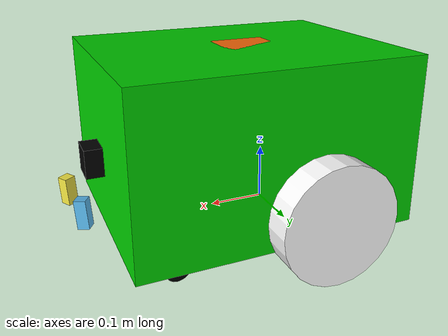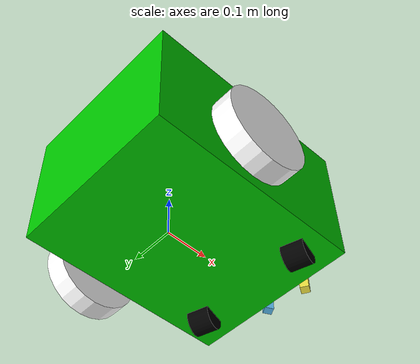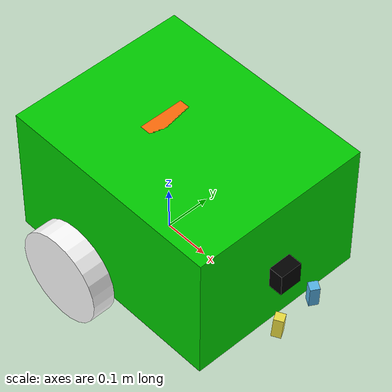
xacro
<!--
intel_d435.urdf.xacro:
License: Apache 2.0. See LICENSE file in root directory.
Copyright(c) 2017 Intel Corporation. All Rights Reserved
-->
<?xml version="1.0"?>
<robot name="Serena" xmlns:xacro="http://ros.org/wiki/xacro">
  <xacro:include filename="sensors.xacro" />
  <xacro:include filename="wheels.xacro" />
  <xacro:include filename="colors.xacro" />
  <xacro:include filename="arguments.xacro" />

  <xacro:property name="camera_resolution_width" value="640" />
  <xacro:property name="camera_resolution_height" value="480" />

  <xacro:property name="base_height" value="0.03" />

  <xacro:property name="wheel_radius" value="0.1" />
  <xacro:property name="wheel_length" value="0.05" />
  <xacro:property name="caster_wheel_radius" value="0.03" />
  <xacro:property name="caster_wheel_length" value="0.05" />
  <xacro:property name="wheel_separation" value="0.255" />
  <xacro:property name="wheel_height_above_base" value="${wheel_radius - base_height}" />

  <!-- Robot namespace property that will be populated by xacro -->
  <xacro:arg name="robot_namespace" default="" />
  <xacro:property name="robot_ns" value="$(arg robot_namespace)" />

  <link name="base_footprint" />

  <joint name="base_link" type="fixed">
    <parent link="base_footprint" />
    <child link="base_link" />
    <origin xyz="0 0 0" rpy="0 0 0" />
  </joint>

  <link name="base_link" />

  <joint name="chassis_joint" type="fixed">
    <parent link="base_footprint" />
    <child link="chassis" />
    <origin xyz="0 0 0" rpy="0 0 0" />
  </joint>

  <link name="chassis" type="fixed">
    <inertial>
      <origin xyz="0.1 0 0.10" rpy="0 0 0" />
      <mass value="30" />
      <inertia ixx="0.89" ixy="20.04" ixz="0.13" iyy="0.78" iyz="-0.04" izz="1.02" />
    </inertial>

    <visual>
      <origin xyz="0.05 0 0.15" rpy="0 0 0" />
      <geometry>
        <box size="0.5 0.4 0.3"/>
      </geometry>
      <material name="green" />
    </visual>
  </link>

  <gazebo reference="chassis">
    <material>Gazebo/Green</material>
  </gazebo>

  <!-- Wheels -->
  <xacro:actuated_wheel
    wheel_prefix="right"
    mass="0.5"
    parent_link="chassis"
    radius="${wheel_radius}"
    height="${wheel_length}"
  >
    <origin xyz="0 -${wheel_separation} ${wheel_height_above_base}" rpy="-${90*DEG_TO_RAD} 0 0" />
  </xacro:actuated_wheel>
  <xacro:actuated_wheel
    wheel_prefix="left"
    mass="0.5"
    parent_link="chassis"
    radius="${wheel_radius}"
    height="${wheel_length}"
  >
    <origin xyz="0 ${wheel_separation} ${wheel_height_above_base}" rpy="-${90*DEG_TO_RAD} 0 0" />
  </xacro:actuated_wheel>
  <xacro:caster_wheel
    wheel_prefix="right"
    mass="0.06"
    parent_link="chassis"
    radius="${caster_wheel_radius}"
    height="${caster_wheel_length}"
    material="black"
  >
    <origin xyz="0.22551 -0.13653 -0.006322" rpy="1.5708 0.034907 0.29259" />
  </xacro:caster_wheel>
  <xacro:caster_wheel
    wheel_prefix="left"
    mass="0.06"
    parent_link="chassis"
    radius="${caster_wheel_radius}"
    height="${caster_wheel_length}"
    material="black"
  >
    <origin xyz="0.22551 0.13653 -0.006322" rpy="1.5708 0.034907 0.29259" />
  </xacro:caster_wheel>

  <link name="actuator_magnet_link">
    <inertial>
      <origin xyz="-0 0 0" rpy="0 0 0" />
      <mass value="0.887893590942272" />
      <inertia ixx="0.00271426770923714" ixy="5.40703247508002E-19" ixz="2.41832420741438E-13" iyy="0.00271494625570355" iyz="5.57398608182026E-20" izz="0.00523534304977873" />
    </inertial>
    <visual>
      <origin xyz="0 0 0" rpy="0 0 0" />
      <geometry>
        <box size="0.1 0.1 0.1"/>
      </geometry>
      <material name="orange">
      </material>
    </visual>
  </link>
  <joint name="actuator_magnet_joint" type="fixed">
    <origin xyz="0.03 0 0.25" rpy="0 0 0" />
    <parent link="chassis" />
    <child link="actuator_magnet_link" />
    <axis xyz="0 0 1" />
    <limit effort="100" velocity="0.3" lower="-0.01" upper="0.018" />
  </joint>

  <!-- Fixed camera configuration -->
  <xacro:intel_d435 namespace="camera" name="left_camera" parent_link="chassis" resolution_width="${camera_resolution_width}" resolution_height="${camera_resolution_height}" >
    <origin
      rpy="$(arg left_camera_rpy)"
      xyz="$(arg left_camera_xyz)"
    />
  </xacro:intel_d435>
  <xacro:intel_d435 namespace="camera" name="right_camera" parent_link="chassis" resolution_width="${camera_resolution_width}" resolution_height="${camera_resolution_height}" >
    <origin
      rpy="$(arg right_camera_rpy)"
      xyz="$(arg right_camera_xyz)"
    />
  </xacro:intel_d435>

  <gazebo reference="actuator_magnet_link">
    <material>Gazebo/Gold</material>
  </gazebo>

  <gazebo reference="left_wheel_link">
    <material>Gazebo/Gold</material>
  </gazebo>

  <gazebo reference="right_wheel_link">
    <material>Gazebo/Gold</material>
  </gazebo>

  <gazebo reference="left_caster_wheel_link">
    <material>Gazebo/Gold</material>
  </gazebo>

  <gazebo reference="right_caster_wheel_link">
    <material>Gazebo/Gold</material>
  </gazebo>

  <link name="laser">
    <inertial>
      <origin xyz="-0.00372645003427308 -0.000389631621171302 -0.0177088543820487" rpy="0 0 0" />
      <mass value="0.634714095589413" />
      <inertia ixx="0.000741390303954208" ixy="-1.18839891558665E-06" ixz="1.59760809314266E-06" iyy="0.000711522529471015" iyz="1.0522295550839E-06" izz="0.000838683288282465" />
    </inertial>
    <visual>
      <origin xyz="0 0 0" rpy="0 0 0" />
      <geometry>
        <box size="0.05 0.05 0.05"/>
      </geometry>
      <material name="black" />
    </visual>
  </link>

  <joint name="scan_joint" type="fixed">
    <origin xyz="0.3059 0 0.1287" rpy="3.1415 0 0" />
    <parent link="chassis" />
    <child link="laser" />
    <axis xyz="0 0 0" />
  </joint>

  <gazebo reference="laser">
    <material>Gazebo/FlatBlack</material>

    <!-- Use unique name for sensor and plugin -->
    <sensor type="ray" name="${robot_ns}_laser_sensor">
      <visualize>false</visualize>  <!-- Set to false to improve performance -->
      <pose>0 0 0 0 0 0</pose>
      <ray>
        <scan>
          <horizontal>
            <samples>360</samples>      <!-- Reduced from 720 for performance -->
            <resolution>0.5</resolution>
            <min_angle>-2.0</min_angle>
            <max_angle>2.0</max_angle>
          </horizontal>
        </scan>
        <range>
          <min>0.1</min>
          <max>10.0</max>
          <resolution>0.01</resolution>
        </range>
      </ray>
      <update_rate>10</update_rate>    <!-- Reduced from 15 to prevent message queue overflow -->
      <noise>
        <type>gaussian</type>
        <mean>0.0</mean>
        <stddev>0.01</stddev>
      </noise>

      <!-- Updated plugin with correct ROS1-style remapping syntax -->
      <plugin name="${robot_ns}_laser_plugin" filename="libgazebo_ros_ray_sensor.so">
        <ros>
          <namespace>${robot_ns}</namespace>
          <argument>~/out:=scan</argument>
        </ros>
        <output_type>sensor_msgs/LaserScan</output_type>
        <frame_name>${robot_ns}/laser</frame_name>
      </plugin>
    </sensor>
  </gazebo>

  <!-- IMU -->
  <joint name="imu_joint" type="fixed">
    <origin xyz="0.2534 0.0 0.1975" rpy="0 0 0" />
    <parent link="chassis" />
    <child link="imu_link" />
  </joint>

  <link name="imu_link">
    <inertial>
      <mass value="0.564" />
      <origin xyz="0 0 0" />
      <inertia ixx="0.003881243" ixy="0.0" ixz="0.0" iyy="0.000498940" iyz="0.0" izz="0.003879257" />
    </inertial>
  </link>

  <link name="shell">
    <inertial>
      <origin xyz="0.04 0.0 0.07" rpy="0 0 0" />
      <mass value="2.0" />
      <inertia ixx="0.14" ixy="0.0" ixz="0.01" iyy="0.12" iyz="0.0" izz="0.20" />
    </inertial>
    <visual>
      <origin xyz="0 0 0" rpy="0 0 0" />
      <geometry>
        <box size="0.1 0.1 0.1"/>
      </geometry>
      <material name="blue"/>
    </visual>
  </link>
  <joint name="shell_joint" type="fixed">
    <origin xyz="0 0 0.085" rpy="1.5708 0 1.5708" />
    <parent link="chassis" />
    <child link="shell" />
    <axis xyz="0 0 0" />
  </joint>

  <gazebo reference="shell">
    <material>Gazebo/GreyTransparent</material>
  </gazebo>

  <transmission name="lifting_mechanism">
    <type>transmission_interface/SimpleTransmission</type>
    <joint name="actuator_magnet_joint">
      <hardwareInterface>hardware_interface/PositionJointInterface</hardwareInterface>
    </joint>
    <actuator name="foo_motor">
      <mechanicalReduction>1</mechanicalReduction>
      <hardwareInterface>hardware_interface/PositionJointInterface</hardwareInterface>
    </actuator>
  </transmission>

  <gazebo>
    <!-- Joint state publisher with properly named plugin -->
    <plugin name="joint_state_publisher" filename="libgazebo_ros_joint_state_publisher.so">
      <ros>
        <namespace>${robot_ns}</namespace>
      </ros>
      <update_rate>15</update_rate>
      <joint_name>right_wheel_joint</joint_name>
      <joint_name>left_wheel_joint</joint_name>
    </plugin>

    <!-- Differential drive controller -->
    <plugin name="diff_drive" filename="libgazebo_ros_diff_drive.so">
      <ros>
        <namespace>${robot_ns}</namespace>
      </ros>

      <!-- Standard configuration -->
      <left_joint>left_wheel_joint</left_joint>
      <right_joint>right_wheel_joint</right_joint>
      <wheel_separation>${2*wheel_separation}</wheel_separation>
      <wheel_diameter>${2*wheel_radius}</wheel_diameter>

      <!-- Using robot namespace in frame IDs -->
      <odometry_frame>${robot_ns}/odom</odometry_frame>
      <robot_base_frame>${robot_ns}/base_footprint</robot_base_frame>

      <!-- Updated parameters for better performance -->
      <wheelAcceleration>1.0</wheelAcceleration>
      <wheelTorque>10</wheelTorque>
      <publish_odom>true</publish_odom>
      <publish_odom_tf>true</publish_odom_tf>
      <publish_wheel_tf>false</publish_wheel_tf>
      <publishWheelJointState>true</publishWheelJointState>
      <max_wheel_torque>10</max_wheel_torque>
      <max_acceleration>3.0</max_acceleration>

      <!-- Use world as odometry source for better accuracy -->
      <odometry_source>1</odometry_source>
      <cmd_vel_timeout>0.5</cmd_vel_timeout>
    </plugin>

    <!-- Keep the old ROS1-style camera plugin remapping format -->
    <plugin name="${robot_ns}_camera_plugin" filename="libgazebo_ros_camera.so">
      <ros>
        <namespace>${robot_ns}</namespace>
        <argument>left_camera/image_raw:=left_camera/color/image_raw</argument>
        <argument>left_camera/camera_info:=left_camera/color/camera_info</argument>
        <argument>left_camera/image_depth:=left_camera/depth/image_raw</argument>
        <argument>left_camera/camera_info_depth:=left_camera/depth/camera_info</argument>
        <argument>left_camera/points:=left_camera/depth/color/points</argument>
        <argument>right_camera/image_raw:=right_camera/color/image_raw</argument>
        <argument>right_camera/camera_info:=right_camera/color/camera_info</argument>
        <argument>right_camera/image_depth:=right_camera/depth/image_raw</argument>
        <argument>right_camera/camera_info_depth:=right_camera/depth/camera_info</argument>
        <argument>right_camera/points:=right_camera/depth/color/points</argument>
      </ros>
      <update_rate>10.0</update_rate>
    </plugin>
  </gazebo>
</robot>

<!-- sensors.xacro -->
<robot xmlns:xacro="http://ros.org/wiki/xacro">

<!--
   Includes
-->
<xacro:include filename="primitives.xacro" />
<xacro:include filename="constants.xacro" />
<xacro:include filename="intel_d435.urdf.xacro" />

<!--
    Depth camera
-->
<xacro:macro name="depth_camera_gazebo_controller" params="name namespace:='' resolution_width:=1280 resolution_height:=720 horizontal_fov:=85 near_plane:=0.1 far_plane:=5.0 frame:=''
    update_rate:=60.0 ">
    <gazebo reference="${frame}">
    <sensor name="${name}_depth" type="depth">

      <always_on>true</always_on>

      <!-- Set update_rate only sensor, not on plugin -->
      <update_rate>${update_rate}</update_rate>

      <camera name="${name}">
        <visualize>true</visualize>
        <pose>0 0 0 0 -1.57 1.57</pose>
        <horizontal_fov>${DEG_TO_RAD * horizontal_fov}</horizontal_fov>
        <image>
          <width>${resolution_width}</width>
          <height>${resolution_height}</height>
          <format>B8G8R8</format>
        </image>
        <clip>
          <near>0.1</near>
          <far>5.0</far>
        </clip>
        <distortion>
          <k1>0.00001</k1>
          <k2>0.00001</k2>
          <k3>0.00001</k3>
          <p1>0.00001</p1>
          <p2>0.00001</p2>
          <center>0.5 0.5</center>
        </distortion>
      </camera>

      <plugin name="${name}_plugin" filename="libgazebo_ros_camera.so">
        <ros>
          <namespace>${namespace}</namespace>
          <argument>${name}/image_raw:=${name}/color/image_raw</argument>
          <argument>${name}/camera_info:=${name}/color/camera_info</argument>
          <argument>${name}/image_depth:=${name}/depth/image_raw</argument>
          <argument>${name}/camera_info_depth:=${name}/depth/camera_info</argument>
          <argument>${name}/points:=${name}/depth/color/points</argument>
          <qos>
            <topic name="${name}/depth/color/points">
                <publisher>
                    <reliability>best_effort</reliability>
                </publisher>
            </topic>
            <topic name="${name}/color/image_raw">
                <publisher>
                    <reliability>best_effort</reliability>
                </publisher>
            </topic>
            <topic name="${name}/depth/image_raw">
                <publisher>
                    <reliability>best_effort</reliability>
                </publisher>
            </topic>
          </qos>
        </ros>

        <!-- Set camera name. If empty, defaults to sensor name (i.e. "sensor_name") -->
        <camera_name>${name}</camera_name>

        <!-- Set TF frame name. If empty, defaults to link name (i.e. "link_name") -->
        <frame_name>${frame}</frame_name>

        <focal_length>0</focal_length>
        <hack_baseline>0.0</hack_baseline>

        <!-- No need to repeat distortion parameters or to set autoDistortion -->

        <min_depth>${near_plane}</min_depth>
        <max_depth>${far_plane}</max_depth>
      </plugin>
    </sensor>
  </gazebo>
</xacro:macro>

<xacro:macro name="intel_d435" params="name parent_link *origin namespace:='' visible:=True material:=black optical_link:=True use_nominal_extrinsics:=True
  resolution_width:=1280 resolution_height:=720 ">

    <xacro:sensor_d435 parent="${parent_link}" name="${name}" use_nominal_extrinsics="${use_nominal_extrinsics}">
        <xacro:insert_block name="origin"/>
    </xacro:sensor_d435>
    <xacro:depth_camera_gazebo_controller
        name="${name}"
        namespace="${namespace}"
        resolution_width="1280"
        resolution_height ="720"
        horizontal_fov ="87"
        near_plane ="0.1"
        far_plane ="5.0"
        frame = "${name}_depth_optical_frame">
    </xacro:depth_camera_gazebo_controller>
</xacro:macro>

<!--
    IMU
-->
<xacro:macro name="imu" params="name parent_link *joint_pose visible:=True length:=0.05 width:=0.05 height:=0.02 mass:=0.05 material:=black namespace:='' data_topic:='raw_data'">

    <xacro:fixed_box name="${name}" length="${length}" width="${width}"  height="${height}" parent_link="${parent_link}" mass="${mass}" material="${material}" visible="${visible}">
        <xacro:insert_block name="joint_pose"/>
    </xacro:fixed_box>

    <xacro:if value="${not namespace}">
        <xacro:property name="namespace" value="${name}" />
    </xacro:if>

    <gazebo>
        <plugin name="imu_controller" filename="libhector_gazebo_ros_imu.so">
            <alwaysOn>true</alwaysOn>

            <frameId>${name}_link</frameId>
            <frameName>${name}_link</frameName>

            <topicName>/${namespace}/${data_topic}</topicName>
            <serviceName>/${namespace}/service</serviceName>

            <updateRate>50.0</updateRate>

            <!-- time constant 1h -->
            <xacro:property name="drift_frequency" value="${1.0/3600.0}" />
            <xacro:property name="scale_error" value="1.0" />

            <accelOffset>0.005 0.005 0.005</accelOffset>
            <accelDrift>0.005 0.005 0.005</accelDrift>
            <accelDriftFrequency>${drift_frequency} ${drift_frequency} ${drift_frequency}</accelDriftFrequency>
            <accelGaussianNoise>0.005 0.005 0.005</accelGaussianNoise>
            <accelScaleError>${scale_error} ${scale_error} ${scale_error}</accelScaleError>

            <rateOffset>0.005 0.005 0.005</rateOffset>
            <rateDrift>0.005 0.005 0.005</rateDrift>
            <rateDriftFrequency>${drift_frequency} ${drift_frequency} ${drift_frequency}</rateDriftFrequency>
            <rateGaussianNoise>0.005 0.005 0.005</rateGaussianNoise>
            <rateScaleError>${scale_error} ${scale_error} ${scale_error}</rateScaleError>

            <yawOffset>0.005</yawOffset>
            <yawDrift>0.005</yawDrift>
            <yawDriftFrequency>${drift_frequency}</yawDriftFrequency>
            <yawGaussianNoise>0.005</yawGaussianNoise>
            <yawScaleError>${scale_error}</yawScaleError>
        </plugin>
    </gazebo>
</xacro:macro>

<!--
    Lidar
-->
<xacro:macro name="lidar" params="name parent_link *joint_pose min_angle:=-1.570796 max_angle:=1.570796 min_range:=0.10 max_range=25.0 ang_resolution:=0.25 visible:=True ray_visible:=true radius:=0.06 height:=0.15 mass:=0.2 material:=black use_gpu:=false namespace:='' mesh:='' update_rate:=35 noise:=0.001">

    <xacro:if value="${not mesh}">
        <xacro:fixed_cylinder name="${name}" radius="${radius}" height="${height}" parent_link="${parent_link}" mass="${mass}" material="${material}" visible="${visible}">
            <xacro:insert_block name="joint_pose"/>
        </xacro:fixed_cylinder>
    </xacro:if>
    <xacro:if value="${mesh != ''}">
        <xacro:fixed_mesh name="${name}" mesh="${mesh}" parent_link="${parent_link}" material="${material}" visible="${visible}">
            <xacro:insert_block name="joint_pose"/>
        </xacro:fixed_mesh>
    </xacro:if>

    <xacro:if value="${not namespace}">
        <xacro:property name="namespace" value="${name}" />
    </xacro:if>

    <xacro:property name="gpu" value="" />
    <xacro:if value="${use_gpu}">
        <xacro:property name="gpu" value="gpu_" />
    </xacro:if>

    <xacro:property name="shortest_ang_diff_step1" value="${fmod(fmod(max_angle-min_angle, 2.0*pi) + 2.0*pi, 2.0*pi)}" />
    <xacro:property name="shortest_ang_diff" value="${shortest_ang_diff_step1-2.0*pi if shortest_ang_diff_step1>pi else shortest_ang_diff_step1}" />
    <xacro:property name="ang_diff" value="${shortest_ang_diff if copysign(1, max_angle) == copysign(1, min_angle) else 2.0*pi-shortest_ang_diff}" />
    <xacro:property name="num_points" value="${degrees(ang_diff)/ang_resolution}" />

    <gazebo reference="${name}_link">
      <sensor type="${gpu}ray" name="${name}">
        <pose>0 0 0 0 0 0</pose>
        <visualize>${ray_visible}</visualize>
        <update_rate>${update_rate}</update_rate>
        <ray>
          <scan>
            <horizontal>
                <samples>${num_points}</samples>
                <resolution>1</resolution>
                <min_angle>${min_angle}</min_angle>
                <max_angle>${max_angle}</max_angle>
            </horizontal>
          </scan>
          <range>
              <min>${min_range}</min>
              <max>${max_range}</max>
              <resolution>0.01</resolution>
          </range>
          <noise>
            <type>gaussian</type>
            <mean>0.0</mean>
            <stddev>${noise}</stddev>
          </noise>
        </ray>
        <plugin name="lidar_controller" filename="libgazebo_ros_${gpu}laser.so">
          <topicName>${namespace}/scan</topicName>
          <frameName>${name}_link</frameName>
        </plugin>
      </sensor>
    </gazebo>
</xacro:macro>

<xacro:macro name="microscan_pro" params="name parent_link *joint_pose visible:=True ray_visible:=true material:=black use_gpu:=false namespace:='' min_angle:=${-137.5*DEG_TO_RAD} max_angle:=${137.5*DEG_TO_RAD}">
    <xacro:lidar
        name="${name}"
        parent_link="${parent_link}"
        material="${material}"
        visible="${visible}"
        use_gpu="${use_gpu}"
        namespace="${namespace}"
        ray_visible="${ray_visible}"
        min_angle="${min_angle}"
        max_angle="${max_angle}"
        min_range="0.10"
        max_range="40.0"
        ang_resolution="0.39">
        <xacro:insert_block name="joint_pose"/>
    </xacro:lidar>
</xacro:macro>

</robot>

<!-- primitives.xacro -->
<!--
From convention REP-103:
"In relation to a body the standard is:

x forward
y left
z up"

Thus, we understand:
x: length
y: width
z: height
 -->

<robot xmlns:xacro="http://ros.org/wiki/xacro">

    <!--
        Default parameters
    -->
    <xacro:property name="minimum_inertia" value="0.01" />

    <xacro:macro name="box_primitive" params="name length width height mass material:=white visible:=True">

        <!-- Set the minimum intertia -->
        <xacro:property name="ixx" value="${minimum_inertia}" />
        <xacro:if value="${mass / 12.0 * (width*width + height*height) > minimum_inertia}">
            <xacro:property name="ixx" value="${mass / 12.0 * (width*width + height*height)}" />
        </xacro:if>

        <xacro:property name="iyy" value="${minimum_inertia}" />
        <xacro:if value="${mass / 12.0 * (length*length + height*height) > minimum_inertia}">
            <xacro:property name="iyy" value="${mass / 12.0 * (length*length + height*height)}" />
        </xacro:if>

        <xacro:property name="izz" value="${minimum_inertia}" />
        <xacro:if value="${mass / 12.0 * (length*length + width*width) > minimum_inertia}">
            <xacro:property name="izz" value="${mass / 12.0 * (length*length + width*width)}" />
        </xacro:if>

        <!-- Creates the link -->
        <link name="${name}">
            <collision>
                <origin xyz="0 0 0" rpy="0 0 0"/>
                <geometry>
                    <box size="${length} ${width} ${height}"/>
                </geometry>
            </collision>

            <xacro:if value="${visible == True}">
                <visual>
                    <origin xyz="0 0 0" rpy="0 0 0"/>
                    <geometry>
                        <box size="${length} ${width} ${height}" />
                    </geometry>
                    <material name="${material}"/>
                </visual>
            </xacro:if>

            <inertial>
                <origin xyz="0 0 0" rpy="0 0 0"/>
                <mass value="${mass}"/>
                <inertia
                    ixx="${ixx}" ixy="0.0" ixz="0.0"
                    iyy="${iyy}" iyz="0.0"
                    izz="${izz}"/>
            </inertial>
        </link>
    </xacro:macro>

    <xacro:macro name="sphere_primitive" params="name radius mass material:=white visible:=True">

        <!-- Set the minimum intertia -->
        <xacro:property name="ixx" value="${minimum_inertia}" />
        <xacro:property name="iyy" value="${minimum_inertia}" />
        <xacro:property name="izz" value="${minimum_inertia}" />
        <xacro:if value="${(2*mass*radius*radius)/5 > minimum_inertia}">
            <xacro:property name="ixx" value="${2*mass*radius*radius/5}" />
            <xacro:property name="iyy" value="${2*mass*radius*radius/5}" />
            <xacro:property name="izz" value="${2*mass*radius*radius/5}" />
        </xacro:if>

        <!-- Creates the link -->
        <link name="${name}">
            <inertial>
                <origin xyz="0 0 0" rpy="0 0 0"/>
                <mass value="${mass}"/>
                <inertia
                    ixx="${ixx}" ixy="0.0" ixz="0.0"
                    iyy="${iyy}" iyz="0.0"
                    izz="${izz}"/>
            </inertial>
            <collision>
                <origin rpy="0 0 0" xyz="0 0 0"/>
                <geometry>
                    <sphere radius="${radius}"/>
                </geometry>
            </collision>
            <xacro:if value="${visible == True}">
                <visual name="visual">
                    <origin rpy="0 0 0" xyz="0 0 0"/>
                    <geometry>
                        <sphere radius="${radius}"/>
                    </geometry>
                    <material name="${material}"/>
                </visual>
            </xacro:if>
        </link>
    </xacro:macro>

    <xacro:macro name="cylinder_primitive" params="name radius height mass material:=white visible:=True collision_height:=''">

        <xacro:if value="${not collision_height}">
            <xacro:property name="collision_height" value="${height}" />
        </xacro:if>

        <!-- Set the minimum intertia -->
        <xacro:property name="ixx" value="${minimum_inertia}" />
        <xacro:if value="${(mass/12*(3*radius*radius+height*height)) > minimum_inertia}">
            <xacro:property name="ixx" value="${(mass/12*(3*radius*radius+height*height))}" />
        </xacro:if>

        <xacro:property name="iyy" value="${minimum_inertia}" />
        <xacro:if value="${(mass/12*(3*radius*radius+height*height)) > minimum_inertia}">
            <xacro:property name="iyy" value="${(mass/12*(3*radius*radius+height*height))}" />
        </xacro:if>

        <xacro:property name="izz" value="${minimum_inertia}" />
        <xacro:if value="${mass*(radius*radius)/2 > minimum_inertia}">
            <xacro:property name="izz" value="${mass*(radius*radius)/2}" />
        </xacro:if>

        <!-- Creates the link -->
        <link name="${name}">
            <inertial>
                <origin xyz="0 0 0" rpy="0 0 0"/>
                <mass value="${mass}"/>
                <inertia
                    ixx="${ixx}" ixy="0.0" ixz="0.0"
                    iyy="${iyy}" iyz="0.0"
                    izz="${izz}"/>
            </inertial>
            <collision>
                <origin rpy="0 0 0" xyz="0 0 0"/>
                <geometry>
                    <cylinder length="${collision_height}" radius="${radius}"/>
                </geometry>
            </collision>
            <xacro:if value="${visible == True}">
                <visual>
                    <origin rpy="0 0 0" xyz="0 0 0"/>
                    <geometry>
                        <cylinder length="${height}" radius="${radius}"/>
                    </geometry>
                    <material name="${material}"/>
                </visual>
            </xacro:if>
        </link>
    </xacro:macro>

    <!--
        Mesh Macro
    -->
    <xacro:macro name="mesh_primitive" params="name mesh material:=white visible:=True">

        <!-- Set the minimum intertia -->
        <xacro:property name="ixx" value="${minimum_inertia}" />
        <xacro:property name="iyy" value="${minimum_inertia}" />
        <xacro:property name="izz" value="${minimum_inertia}" />

        <!-- Creates the link -->
        <link name="${name}">
            <inertial>
                <origin xyz="0 0 0" rpy="0 0 0"/>
                <mass value="${mass}"/>
                <inertia
                    ixx="${ixx}" ixy="0.0" ixz="0.0"
                    iyy="${iyy}" iyz="0.0"
                    izz="${izz}"/>
            </inertial>
            <collision>
                <origin rpy="0 0 0" xyz="0 0 0"/>
                <geometry>
                    <mesh filename="${mesh}"/>
                </geometry>
            </collision>
            <xacro:if value="${visible == True}">
                <visual>
                    <origin rpy="0 0 0" xyz="0 0 0"/>
                    <geometry>
                        <mesh filename="${mesh}"/>
                    </geometry>
                    <material name="${material}"/>
                </visual>
            </xacro:if>
        </link>
    </xacro:macro>

    <!--
        Fixed box
    -->
    <xacro:macro name="fixed_box" params="name length width height mass parent_link *joint_pose material:=white visible:=True">
        <xacro:box_primitive name="${name}_link" length="${length}" width="${width}" height="${height}" mass="${mass}" visible="${visible}"  material="${material}"/>

        <joint name="${name}_joint" type="fixed">
            <parent link="${parent_link}"/>
            <child link="${name}_link"/>
            <xacro:insert_block name="joint_pose"/>
        </joint>
    </xacro:macro>

    <!--
        Fixed cylinder
    -->
    <xacro:macro name="fixed_cylinder" params="name radius height mass parent_link *joint_pose material:=white visible:=True">
        <xacro:cylinder_primitive name="${name}_link" radius="${radius}" height="${height}" mass="${mass}" visible="${visible}" material="${material}"/>

        <joint name="${name}_joint" type="fixed">
            <parent link="${parent_link}"/>
            <child link="${name}_link"/>
            <xacro:insert_block name="joint_pose"/>
        </joint>
    </xacro:macro>

    <!--
        Fixed sphere
    -->
    <xacro:macro name="fixed_sphere" params="name radius mass parent_link *joint_pose material:=white visible:=True">
        <xacro:sphere_primitive name="${name}_link" radius="${radius}" mass="${mass}" visible="${visible}" material="${material}"/>

        <joint name="${name}_joint" type="fixed">
            <parent link="${parent_link}"/>
            <child link="${name}_link"/>
            <xacro:insert_block name="joint_pose"/>
        </joint>
    </xacro:macro>

    <!--
        Fixed geometry
    -->
    <xacro:macro name="fixed_mesh" params="name mesh parent_link *joint_pose material:=white visible:=True">
        <xacro:mesh_primitive name="${name}_link" mesh="${mesh}" visible="${visible}" material="${material}"/>

        <joint name="${name}_joint" type="fixed">
            <parent link="${parent_link}"/>
            <child link="${name}_link"/>
            <xacro:insert_block name="joint_pose"/>
        </joint>
    </xacro:macro>
</robot>

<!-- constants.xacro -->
<robot xmlns:xacro="http://ros.org/wiki/xacro">
	<!-- Constants -->
	<xacro:property name="PI" value="3.1415926535897931"/>
	<xacro:property name="DEG_TO_RAD" value="${PI/180}"/>
</robot>

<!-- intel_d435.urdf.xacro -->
<robot name="sensor_d435" xmlns:xacro="http://ros.org/wiki/xacro">
  <!-- Includes -->
  <xacro:include filename="$(find realsense2_description)/urdf/_materials.urdf.xacro" />
  <xacro:include filename="$(find realsense2_description)/urdf/_usb_plug.urdf.xacro" />

  <xacro:macro name="sensor_d435" params="parent *origin name:=camera use_nominal_extrinsics:=false add_plug:=false use_mesh:=true">
    <xacro:property name="M_PI" value="3.1415926535897931" />

    <!-- The following values are approximate, and the camera node
     publishing TF values with actual calibrated camera extrinsic values -->
    <xacro:property name="d435_cam_depth_to_infra1_offset" value="0.0"/>
    <xacro:property name="d435_cam_depth_to_infra2_offset" value="-0.050"/>
    <xacro:property name="d435_cam_depth_to_color_offset" value="0.015"/>

    <!-- The following values model the aluminum peripherial case for the
  	D435 camera, with the camera joint represented by the actual
  	peripherial camera tripod mount -->
    <xacro:property name="d435_cam_width" value="0.090"/>
    <xacro:property name="d435_cam_height" value="0.025"/>
    <xacro:property name="d435_cam_depth" value="0.02505"/>
    <xacro:property name="d435_cam_mount_from_center_offset" value="0.0149"/>
    <!-- glass cover is 0.1 mm inwards from front aluminium plate -->
    <xacro:property name="d435_glass_to_front" value="0.1e-3"/>
    <!-- see datasheet Revision 007, Fig. 4-4 page 65 -->
    <xacro:property name="d435_zero_depth_to_glass" value="4.2e-3"/>
    <!-- convenience precomputation to avoid clutter-->
    <xacro:property name="d435_mesh_x_offset" value="${d435_cam_mount_from_center_offset-d435_glass_to_front-d435_zero_depth_to_glass}"/>

    <!-- The following offset is relative the the physical D435 camera peripherial
  	camera tripod mount -->
    <xacro:property name="d435_cam_depth_px" value="${d435_cam_mount_from_center_offset}"/>
    <xacro:property name="d435_cam_depth_py" value="0.0175"/>
    <xacro:property name="d435_cam_depth_pz" value="${d435_cam_height/2}"/>

    <!-- camera body, with origin at bottom screw mount -->
    <joint name="${name}_joint" type="fixed">
      <xacro:insert_block name="origin" />
      <parent link="${parent}"/>
      <child link="${name}_bottom_screw_frame" />
    </joint>
    <link name="${name}_bottom_screw_frame"/>

    <joint name="${name}_link_joint" type="fixed">
      <origin xyz="${d435_mesh_x_offset} ${d435_cam_depth_py} ${d435_cam_depth_pz}" rpy="0 0 0"/>
      <parent link="${name}_bottom_screw_frame"/>
      <child link="${name}_link" />
    </joint>

    <link name="${name}_link">
      <visual>
        <xacro:if value="${use_mesh}">
          <!-- the mesh origin is at front plate in between the two infrared camera axes -->
          <origin xyz="${d435_zero_depth_to_glass + d435_glass_to_front} ${-d435_cam_depth_py} 0" rpy="0 0 0"/>
          <geometry>
            <box size="0.02 0.05 0.02"/>
          </geometry>
        </xacro:if>
      </visual>
      <inertial>
        <!-- The following are not reliable values, and should not be used for modeling -->
        <mass value="0.072" />
        <origin xyz="0 0 0" />
        <inertia ixx="0.003881243" ixy="0.0" ixz="0.0" iyy="0.000498940" iyz="0.0" izz="0.003879257" />
      </inertial>
    </link>

    <!-- Use the nominal extrinsics between camera frames if the calibrated extrinsics aren't being published. e.g. running the device in simulation  -->
    <xacro:if value="${use_nominal_extrinsics}">
      <!-- camera depth joints and links -->
      <joint name="${name}_depth_joint" type="fixed">
        <origin xyz="0 0 0" rpy="0 0 0"/>
        <parent link="${name}_link"/>
        <child link="${name}_depth_frame" />
      </joint>
      <link name="${name}_depth_frame"/>

      <joint name="${name}_depth_optical_joint" type="fixed">
        <origin xyz="0 0 0" rpy="${-M_PI/2} 0 ${-M_PI/2}" />
        <parent link="${name}_depth_frame" />
        <child link="${name}_depth_optical_frame" />
      </joint>
      <link name="${name}_depth_optical_frame"/>

      <!-- camera left IR joints and links -->
      <joint name="${name}_infra1_joint" type="fixed">
        <origin xyz="0 ${d435_cam_depth_to_infra1_offset} 0" rpy="0 0 0" />
        <parent link="${name}_link" />
        <child link="${name}_infra1_frame" />
      </joint>
      <link name="${name}_infra1_frame"/>

      <joint name="${name}_infra1_optical_joint" type="fixed">
        <origin xyz="0 0 0" rpy="${-M_PI/2} 0 ${-M_PI/2}" />
        <parent link="${name}_infra1_frame" />
        <child link="${name}_infra1_optical_frame" />
      </joint>
      <link name="${name}_infra1_optical_frame"/>

      <!-- camera right IR joints and links -->
      <joint name="${name}_infra2_joint" type="fixed">
        <origin xyz="0 ${d435_cam_depth_to_infra2_offset} 0" rpy="0 0 0" />
        <parent link="${name}_link" />
        <child link="${name}_infra2_frame" />
      </joint>
      <link name="${name}_infra2_frame"/>

      <joint name="${name}_infra2_optical_joint" type="fixed">
        <origin xyz="0 0 0" rpy="${-M_PI/2} 0 ${-M_PI/2}" />
        <parent link="${name}_infra2_frame" />
        <child link="${name}_infra2_optical_frame" />
      </joint>
      <link name="${name}_infra2_optical_frame"/>

      <!-- camera color joints and links -->
      <joint name="${name}_color_joint" type="fixed">
        <origin xyz="0 ${d435_cam_depth_to_color_offset} 0" rpy="0 0 0" />
        <parent link="${name}_link" />
        <child link="${name}_color_frame" />
      </joint>
      <link name="${name}_color_frame"/>

      <joint name="${name}_color_optical_joint" type="fixed">
        <origin xyz="0 0 0" rpy="${-M_PI/2} 0 ${-M_PI/2}" />
        <parent link="${name}_color_frame" />
        <child link="${name}_color_optical_frame" />
      </joint>
      <link name="${name}_color_optical_frame"/>
    </xacro:if>

    <xacro:if value="${add_plug}">
      <xacro:usb_plug parent="${name}_link" name="${name}_usb_plug">
        <origin xyz="${d435_cam_mount_from_center_offset - 0.02095} ${-d435_cam_depth_py - 0.0353} 0" rpy="0 0 0"/>
      </xacro:usb_plug>
    </xacro:if>
  </xacro:macro>
</robot>

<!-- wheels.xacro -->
<robot xmlns:xacro="http://ros.org/wiki/xacro">

    <!--
       Includes
    -->
    <xacro:include filename="primitives.xacro" />

    <!--
        Prototype wheel
    -->
    <xacro:macro
        name="simple_wheel"
        params="
            wheel_prefix
            mass
            parent_link
            *origin
            **gazebo_options
            radius:=0.1
            height:=0.04
            material:=white
            collision_height:=0.001
            joint_type:=continuous
            mesh=''
        "
    >
        <!-- Set the minimum intertia -->
        <xacro:property name="ixx" value="${minimum_inertia}" />
        <xacro:if value="${(mass/12*(3*radius*radius+height*height)) > minimum_inertia}">
            <xacro:property name="ixx" value="${(mass/12*(3*radius*radius+height*height))}" />
        </xacro:if>

        <xacro:property name="iyy" value="${minimum_inertia}" />
        <xacro:if value="${(mass/12*(3*radius*radius+height*height)) > minimum_inertia}">
            <xacro:property name="iyy" value="${(mass/12*(3*radius*radius+height*height))}" />
        </xacro:if>

        <xacro:property name="izz" value="${minimum_inertia}" />
        <xacro:if value="${mass*(radius*radius)/2 > minimum_inertia}">
            <xacro:property name="izz" value="${mass*(radius*radius)/2}" />
        </xacro:if>

        <xacro:if value="${not mesh}">
            <xacro:cylinder_primitive name="${wheel_prefix}_wheel_link" radius="${radius}" height="${height}" mass="${mass}" material="${material}" collision_height="${collision_height}"/>
        </xacro:if>

        <xacro:if value="${mesh != ''}">
            <link name="${wheel_prefix}_wheel_link">
                <inertial>
                <origin xyz="0 0 0" rpy="0 0 0" />
                <mass value="${mass}" />
                <inertia ixx="${ixx}" ixy="0" ixz="0" iyy="${iyy}" iyz="0" izz="${izz}" />
                </inertial>

                <visual>
                <origin xyz="0 0 0" rpy="0 0 0" />
                <geometry>
                    <cylinder length="${height}" radius="${radius}"/>
                </geometry>
                <material name="${material}"/>
                </visual>

                <collision>
                <origin xyz="0 0 0" rpy="0 0 0" />
                <geometry>
                    <cylinder length="${height}" radius="${radius}"/>
                </geometry>
                </collision>
            </link>
        </xacro:if>

        <joint name="${wheel_prefix}_wheel_joint" type="${joint_type}">
            <parent link="${parent_link}"/>
            <child link="${wheel_prefix}_wheel_link"/>
            <xacro:insert_block name="origin"/>
            <axis xyz="0 0 1"/>
        </joint>

        <gazebo reference="${wheel_prefix}_wheel_link">
            <xacro:insert_block name="gazebo_options"/>
        </gazebo>
    </xacro:macro>

    <!--
        Actuated wheel
    -->
    <xacro:macro
        name="actuated_wheel"
        params="
            wheel_prefix
            mass
            parent_link
            *origin
            radius:=0.1
            height:=0.04
            reduction:=1
            material:=white
            collision_height:=0.001
            mesh=''
        "
    >
        <xacro:simple_wheel
            wheel_prefix="${wheel_prefix}"
            mass="${mass}"
            parent_link="${parent_link}"
            radius="${radius}"
            height="${height}"
            material="${material}"
            collision_height="${collision_height}"
            mesh="${mesh}"
        >
            <xacro:insert_block name="origin"/>
            <gazebo_options>
                <mu1 value="1"/>
                <mu2 value="1"/>
                <fdir1 value="0 0 1"/>
            </gazebo_options>
        </xacro:simple_wheel>

        <transmission name="${wheel_prefix}_wheel_trans" type="SimpleTransmission">
            <type>transmission_interface/SimpleTransmission</type>
            <actuator name="${wheel_prefix}_wheel_motor">
                <mechanicalReduction>${reduction}</mechanicalReduction>
            </actuator>
            <joint name="${wheel_prefix}_wheel_joint">
                <hardwareInterface>hardware_interface/VelocityJointInterface</hardwareInterface>
            </joint>
        </transmission>
    </xacro:macro>

    <!--
        Caster wheel cylinder
    -->
    <xacro:macro
        name="caster_wheel"
        params="
            wheel_prefix
            radius
            height
            mass
            parent_link
            *origin
            material:=white
            mesh:=''
        "
    >
        <xacro:simple_wheel
            wheel_prefix="${wheel_prefix}_caster"
            mass="${mass}"
            parent_link="${parent_link}"
            radius="${radius}"
            height="${height}"
            material="${material}"
            collision_height="0.01"
            mesh="${mesh}"
            joint_type="fixed"
        >
            <xacro:insert_block name="origin"/>
            <gazebo_options>
                <mu1 value="0"/>
                <mu2 value="0"/>
                <kp value="10000000.0" />
                <kd value="1.0" />
                <fdir1 value="0 0 1"/>
                <minDepth value="0.005"/>
            </gazebo_options>
        </xacro:simple_wheel>
    </xacro:macro>

</robot>

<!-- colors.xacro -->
<robot xmlns:xacro="http://ros.org/wiki/xacro">

  <material name="black">
    <color rgba="0.0 0.0 0.0 1.0"/>
  </material>

  <material name="blue">
    <color rgba="0.0 0.0 0.8 1.0"/>
  </material>

  <material name="green">
    <color rgba="0.0 0.8 0.0 1.0"/>
  </material>

  <material name="grey">
    <color rgba="0.2 0.2 0.2 1.0"/>
  </material>

  <material name="orange">
    <color rgba="${255/255} ${108/255} ${10/255} 1.0"/>
  </material>

  <material name="brown">
    <color rgba="${222/255} ${207/255} ${195/255} 1.0"/>
  </material>

  <material name="red">
    <color rgba="0.8 0.0 0.0 1.0"/>
  </material>

  <material name="white">
    <color rgba="1.0 1.0 1.0 1.0"/>
  </material>

</robot>
